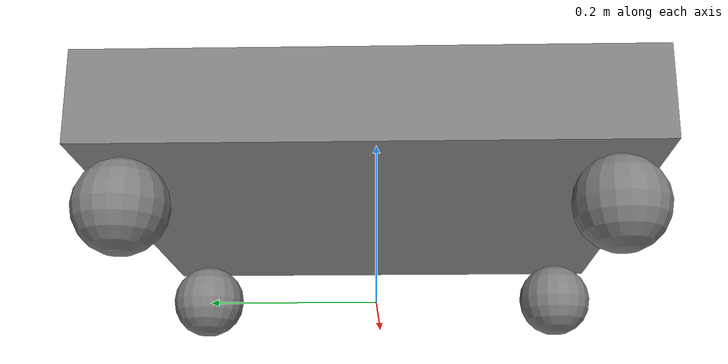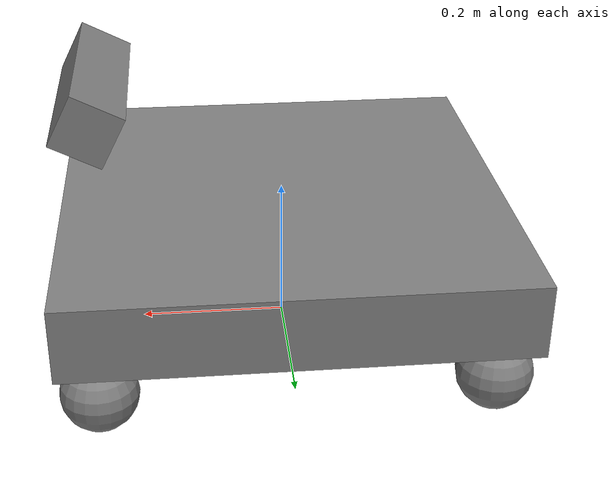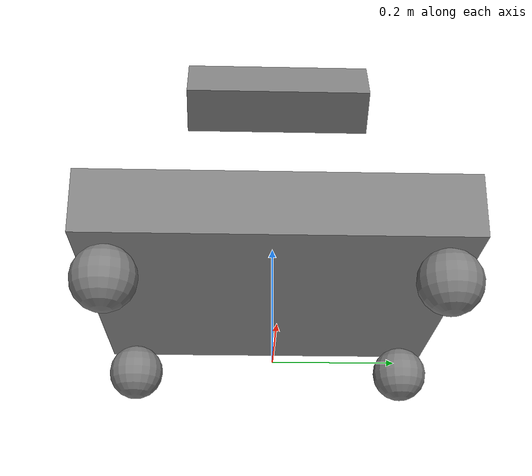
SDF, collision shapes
<?xml version='1.0'?>
<sdf version='1.5'>

  <model name='ropod'>

   <link name='base_link'>

      <inertial>
        <mass>0.01</mass>
        <inertia> <!-- inertias are tricky to compute -->
          <!-- http://gazebosim.org/tutorials?tut=inertia&cat=build_robot -->
          <ixx>0.083*00.0*1.01</ixx>       <!-- for a box: ixx = 0.083 * mass * (y*y + z*z) -->
          <ixy>0.0</ixy>         <!-- for a box: ixy = 0 -->
          <ixz>0.0</ixz>         <!-- for a box: ixz = 0 -->
          <iyy>0.083*00.01*1.01</iyy>       <!-- for a box: iyy = 0.083 * mass * (x*x + z*z) -->
          <iyz>0.0</iyz>         <!-- for a box: iyz = 0 -->
          <izz>0.083*00.01*2</izz>       <!-- for a box: izz = 0.083 * mass * (x*x + y*y) -->
        </inertia>
      </inertial>

      <collision name='base_link_collision'>
        <pose>0 0 0.15 0 0 0</pose>
        <geometry>
          <box>
            <size>0.6 0.6 0.1</size>
          </box>
        </geometry>
      </collision>
      <visual name='base_link_visual'>
        <pose>0 0 0.15 0 0 0</pose>
        <geometry>
          <box>
            <size>0.6 0.6 0.1</size>
          </box>
        </geometry>
	<material>
		<ambient>0.5 0.5 0.5 1</ambient>
		<diffuse>0.5 0.5 0.5 1</diffuse>
		<specular>0.1 0.1 0.1 1</specular>
		<emissive>0 0 0 0</emissive>
	</material>
      </visual>

      <collision name='base_link_collision_left_rear_wheel'>
        <pose>-0.25 0.25 0.05 0 -0 0</pose>
        <geometry>
          <sphere>
            <radius>0.05</radius>
          </sphere>
        </geometry>
        <surface>
          <contact>
            <ode>
              <kp>1e+09</kp>
              <kd>1</kd>
            </ode>
          </contact>
          <friction>
            <ode>
              <mu>5</mu>
              <mu2>5</mu2>
            </ode>
          </friction>
        </surface>
      </collision>
      <visual name='base_link_visual_left_rear_wheel'>
         <pose>-0.25 0.25 0.05 0 -0 0</pose>
        <geometry>
          <sphere>
            <radius>0.05</radius>
          </sphere>
        </geometry>
      </visual>

      <collision name='base_link_collision_left_top_wheel'>
        <pose>0.25 0.25 0.05 0 -0 0</pose>
        <geometry>
          <sphere>
            <radius>0.05</radius>
          </sphere>
        </geometry>
        <surface>
          <contact>
            <ode>
              <kp>1e+09</kp>
              <kd>1</kd>
            </ode>
          </contact>
          <friction>
            <ode>
              <mu>5</mu>
              <mu2>5</mu2>
            </ode>
          </friction>
        </surface>
      </collision>
      <visual name='base_link_visual_left_top_wheel'>
         <pose>0.25 0.25 0.05 0 -0 0</pose>
        <geometry>
          <sphere>
            <radius>0.05</radius>
          </sphere>
        </geometry>
      </visual>

      <collision name='base_link_collision_right_top_wheel'>
        <pose>0.25 -0.25 0.05 0 -0 0</pose>
        <geometry>
          <sphere>
            <radius>0.05</radius>
          </sphere>
        </geometry>
        <surface>
          <contact>
            <ode>
              <kp>1e+09</kp>
              <kd>1</kd>
            </ode>
          </contact>
          <friction>
            <ode>
              <mu>5</mu>
              <mu2>5</mu2>
            </ode>
          </friction>
        </surface>
      </collision>
      <visual name='base_link_visual_right_top_wheel'>
         <pose>0.25 -0.25 0.05 0 -0 0</pose>
        <geometry>
          <sphere>
            <radius>0.05</radius>
          </sphere>
        </geometry>
      </visual>

      <collision name='base_link_collision_right_rear_wheel'>
        <pose>-0.25 -0.25 0.05 0 -0 0</pose>
        <geometry>
          <sphere>
            <radius>0.05</radius>
          </sphere>
        </geometry>
        <surface>
          <contact>
            <ode>
              <kp>1e+09</kp>
              <kd>1</kd>
            </ode>
          </contact>
          <friction>
            <ode>
              <mu>5</mu>
              <mu2>5</mu2>
            </ode>
          </friction>
        </surface>
      </collision>
      <visual name='base_link_visual_right_rear_wheel'>
         <pose>-0.25 -0.25 0.05 0 -0 0</pose>
        <geometry>
          <sphere>
            <radius>0.05</radius>
          </sphere>
        </geometry>
      </visual>

<!-- ********************** laser ***************************** -->

      <visual name='base_link_visual_laser'>
        <pose>0.25 0 0.25 0 -0 0</pose>
        <geometry>
          <box>
            <size>0.04 0.04 0.04</size>
          </box>
        </geometry>
      </visual>
      <visual name='base_link_visual_lasertop'>
        <pose>0.25 0 0.275 0 -0 0</pose>
        <geometry>
          <box>
            <size>0.04 0.04 0.01</size>
          </box>
        </geometry>
      </visual>

      <sensor name='laser' type='ray'>
	 <pose>0.25 0 0.25 0 0 0</pose>
        <ray>
          <scan>
            <horizontal>
              <samples>500</samples>
              <resolution>1</resolution>
              <min_angle>-2.35</min_angle>
              <max_angle>2.35</max_angle>
            </horizontal>
            <vertical>
              <samples>1</samples>
              <resolution>1</resolution>
              <min_angle>0</min_angle>
              <max_angle>0</max_angle>
            </vertical>
          </scan>
          <range>
            <min>0.01</min>
            <max>15</max>
            <resolution>0.01</resolution>
          </range>
        </ray>

      <plugin name="gazebo_ros_laser" filename="libgazebo_ros_laser.so">
        <topicName>/ropod/laser_sim</topicName>
         <frameName>/ropod/laser/scan</frameName>
        <robotNamespace></robotNamespace>
        <gaussianNoise>0.01</gaussianNoise>
        <always_on>1</always_on>
        <updateRate>30.0</updateRate>
      </plugin>
      <visualize>1</visualize>

    </sensor>
<!-- ********************** kinect ***************************** -->

<inertial>
        <mass>0.1</mass>
      </inertial>
      <collision name="base_link_collision_kinect">
	<pose>0.25 0 0.35 0 -0.471238898 0</pose>
        <geometry>
          <box>
            <size>0.073000 0.276000 0.072000</size>
          </box>
        </geometry>
      </collision>
      <visual name="base_link_visual_kinect">
	<pose>0.25 0 0.35 0 -0.471238898 0</pose>
        <geometry>
          <mesh>
            <uri>model://kinect/meshes/kinect.dae</uri>
          </mesh>
        </geometry>
      </visual>
      <sensor name="camera" type="depth">
	<pose>0.25 0 0.35 0 -0.471238898 0</pose>
        <update_rate>20</update_rate>
        <camera>
          <horizontal_fov>1.46607657</horizontal_fov>
          <image>
            <width>1920</width>
            <height>1080</height>
            <format>R8G8B8</format>
          </image>
          <clip>
            <near>0.05</near>
            <far>6</far>
          </clip>
        </camera>
        <plugin name="camera_plugin" filename="libgazebo_ros_openni_kinect.so">
          <baseline>0.2</baseline>
          <alwaysOn>true</alwaysOn>
          <updateRate>0.0</updateRate>
          <cameraName>kinect</cameraName>
          <imageTopicName>/camera/rgb/image_raw</imageTopicName>
          <cameraInfoTopicName>/camera/rgb/camera_info</cameraInfoTopicName>
          <depthImageTopicName>/camera/depth/image_raw</depthImageTopicName>
          <depthImageInfoTopicName>/camera/depth/camera_info</depthImageInfoTopicName>
          <pointCloudTopicName>/camera/depth/points</pointCloudTopicName>
          <frameName>camera_link</frameName>
          <pointCloudCutoff>0.05</pointCloudCutoff>
	  <distortionK1>0.00000001</distortionK1>
	  <distortionK2>0.00000001</distortionK2>
	  <distortionK3>0.00000001</distortionK3>
	  <distortionT1>0.00000001</distortionT1>
	  <distortionT2>0.00000001</distortionT2>
          <CxPrime>0</CxPrime>
          <Cx>0</Cx>
          <Cy>0</Cy>
          <focalLength>0</focalLength>
          <hackBaseline>0</hackBaseline>
        </plugin>
      </sensor>

<!-- ********************** Other parameters ***************************** -->
      <gravity>1</gravity>
      <velocity_decay>
        <linear>0</linear>
        <angular>0</angular>
      </velocity_decay>
      <self_collide>0</self_collide>

   </link>

   <plugin name="Odometry_Plugin" filename="libOdometry_Plugin.so">
       <updateRate>30.0</updateRate>
       <veltopicName>/ropod/cmd_vel</veltopicName>
       <odomtopicName>/ropod/odom_incomplete</odomtopicName>
       <robotBaseFrame>/ropod/base_link</robotBaseFrame>
       <odomFrame>/ropod/odom</odomFrame>
   </plugin>

  </model>

  </sdf>
